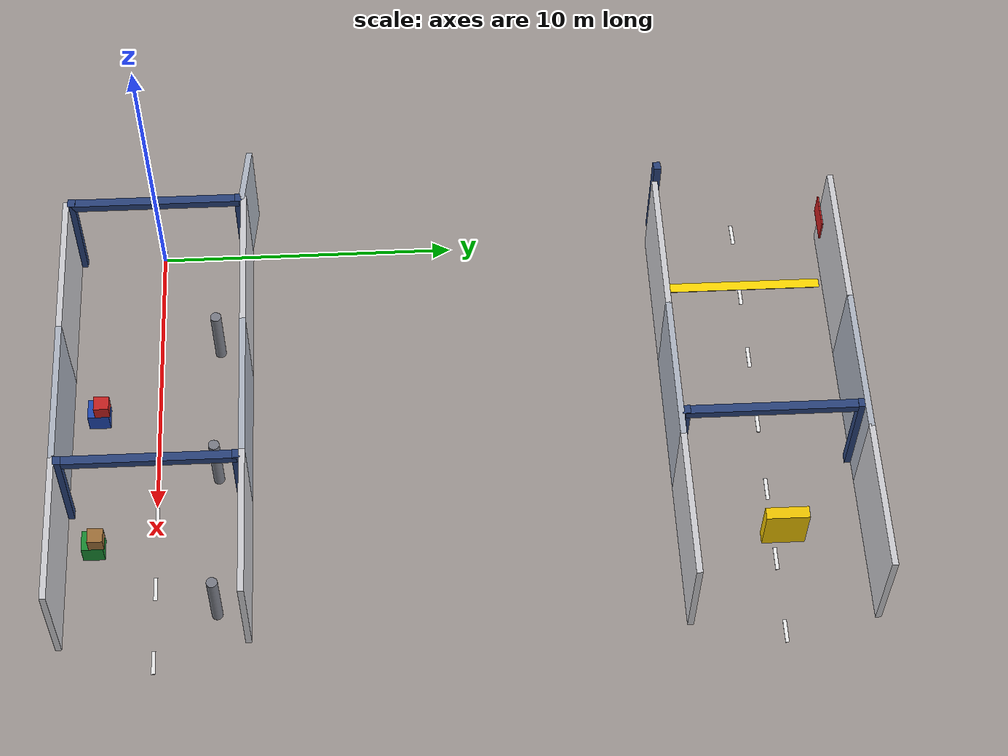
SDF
<sdf version="1.10">
 <world name="tunnel_circuit">
  <model name="tw_Ao_0">
   <static>true</static>
   <pose>2.500 -3.000 1.750 0 0 0.0000</pose>
   <link name="link">
    <collision name="col"><geometry><box><size>5.060 0.200 3.500</size></box></geometry></collision>
    <visual name="vis">
     <geometry><box><size>5.060 0.200 3.500</size></box></geometry>
     <material>
      <ambient>0.50 0.50 0.52 1</ambient>
      <diffuse>0.80 0.80 0.82 1</diffuse>
      <specular>0.1 0.1 0.1 1</specular>
      <pbr>
       <metal><albedo_map>detail.png</albedo_map><roughness>0.92</roughness><metalness>0.0</metalness></metal>
      </pbr>
     </material>
    </visual>
   </link>
  </model>
  <model name="tw_Ao_1">
   <static>true</static>
   <pose>7.500 -3.000 1.750 0 0 0.0000</pose>
   <link name="link">
    <collision name="col"><geometry><box><size>5.060 0.200 3.500</size></box></geometry></collision>
    <visual name="vis">
     <geometry><box><size>5.060 0.200 3.500</size></box></geometry>
     <material>
      <ambient>0.42 0.44 0.48 1</ambient>
      <diffuse>0.68 0.71 0.76 1</diffuse>
      <specular>0.1 0.1 0.1 1</specular>
      <pbr>
       <metal><albedo_map>detail.png</albedo_map><roughness>0.9</roughness><metalness>0.0</metalness></metal>
      </pbr>
     </material>
    </visual>
   </link>
  </model>
  <model name="tw_Ao_2">
   <static>true</static>
   <pose>12.500 -3.000 1.750 0 0 0.0000</pose>
   <link name="link">
    <collision name="col"><geometry><box><size>5.060 0.200 3.500</size></box></geometry></collision>
    <visual name="vis">
     <geometry><box><size>5.060 0.200 3.500</size></box></geometry>
     <material>
      <ambient>0.50 0.50 0.52 1</ambient>
      <diffuse>0.80 0.80 0.82 1</diffuse>
      <specular>0.1 0.1 0.1 1</specular>
      <pbr>
       <metal><albedo_map>detail.png</albedo_map><roughness>0.92</roughness><metalness>0.0</metalness></metal>
      </pbr>
     </material>
    </visual>
   </link>
  </model>
  <model name="tw_Ai_0">
   <static>true</static>
   <pose>2.500 3.000 1.750 0 0 0.0000</pose>
   <link name="link">
    <collision name="col"><geometry><box><size>5.060 0.200 3.500</size></box></geometry></collision>
    <visual name="vis">
     <geometry><box><size>5.060 0.200 3.500</size></box></geometry>
     <material>
      <ambient>0.50 0.50 0.52 1</ambient>
      <diffuse>0.80 0.80 0.82 1</diffuse>
      <specular>0.1 0.1 0.1 1</specular>
      <pbr>
       <metal><albedo_map>detail.png</albedo_map><roughness>0.92</roughness><metalness>0.0</metalness></metal>
      </pbr>
     </material>
    </visual>
   </link>
  </model>
  <model name="tw_Ai_1">
   <static>true</static>
   <pose>7.500 3.000 1.750 0 0 0.0000</pose>
   <link name="link">
    <collision name="col"><geometry><box><size>5.060 0.200 3.500</size></box></geometry></collision>
    <visual name="vis">
     <geometry><box><size>5.060 0.200 3.500</size></box></geometry>
     <material>
      <ambient>0.42 0.44 0.48 1</ambient>
      <diffuse>0.68 0.71 0.76 1</diffuse>
      <specular>0.1 0.1 0.1 1</specular>
      <pbr>
       <metal><albedo_map>detail.png</albedo_map><roughness>0.9</roughness><metalness>0.0</metalness></metal>
      </pbr>
     </material>
    </visual>
   </link>
  </model>
  <model name="tw_Ai_2">
   <static>true</static>
   <pose>12.500 3.000 1.750 0 0 0.0000</pose>
   <link name="link">
    <collision name="col"><geometry><box><size>5.060 0.200 3.500</size></box></geometry></collision>
    <visual name="vis">
     <geometry><box><size>5.060 0.200 3.500</size></box></geometry>
     <material>
      <ambient>0.50 0.50 0.52 1</ambient>
      <diffuse>0.80 0.80 0.82 1</diffuse>
      <specular>0.1 0.1 0.1 1</specular>
      <pbr>
       <metal><albedo_map>detail.png</albedo_map><roughness>0.92</roughness><metalness>0.0</metalness></metal>
      </pbr>
     </material>
    </visual>
   </link>
  </model>
  <model name="tw_Bo_0">
   <static>true</static>
   <pose>2.500 23.000 1.750 0 0 0.0000</pose>
   <link name="link">
    <collision name="col"><geometry><box><size>5.060 0.200 3.500</size></box></geometry></collision>
    <visual name="vis">
     <geometry><box><size>5.060 0.200 3.500</size></box></geometry>
     <material>
      <ambient>0.50 0.50 0.52 1</ambient>
      <diffuse>0.80 0.80 0.82 1</diffuse>
      <specular>0.1 0.1 0.1 1</specular>
      <pbr>
       <metal><albedo_map>detail.png</albedo_map><roughness>0.92</roughness><metalness>0.0</metalness></metal>
      </pbr>
     </material>
    </visual>
   </link>
  </model>
  <model name="tw_Bo_1">
   <static>true</static>
   <pose>7.500 23.000 1.750 0 0 0.0000</pose>
   <link name="link">
    <collision name="col"><geometry><box><size>5.060 0.200 3.500</size></box></geometry></collision>
    <visual name="vis">
     <geometry><box><size>5.060 0.200 3.500</size></box></geometry>
     <material>
      <ambient>0.42 0.44 0.48 1</ambient>
      <diffuse>0.68 0.71 0.76 1</diffuse>
      <specular>0.1 0.1 0.1 1</specular>
      <pbr>
       <metal><albedo_map>detail.png</albedo_map><roughness>0.9</roughness><metalness>0.0</metalness></metal>
      </pbr>
     </material>
    </visual>
   </link>
  </model>
  <model name="tw_Bo_2">
   <static>true</static>
   <pose>12.500 23.000 1.750 0 0 0.0000</pose>
   <link name="link">
    <collision name="col"><geometry><box><size>5.060 0.200 3.500</size></box></geometry></collision>
    <visual name="vis">
     <geometry><box><size>5.060 0.200 3.500</size></box></geometry>
     <material>
      <ambient>0.50 0.50 0.52 1</ambient>
      <diffuse>0.80 0.80 0.82 1</diffuse>
      <specular>0.1 0.1 0.1 1</specular>
      <pbr>
       <metal><albedo_map>detail.png</albedo_map><roughness>0.92</roughness><metalness>0.0</metalness></metal>
      </pbr>
     </material>
    </visual>
   </link>
  </model>
  <model name="tw_Bi_0">
   <static>true</static>
   <pose>2.500 17.000 1.750 0 0 0.0000</pose>
   <link name="link">
    <collision name="col"><geometry><box><size>5.060 0.200 3.500</size></box></geometry></collision>
    <visual name="vis">
     <geometry><box><size>5.060 0.200 3.500</size></box></geometry>
     <material>
      <ambient>0.50 0.50 0.52 1</ambient>
      <diffuse>0.80 0.80 0.82 1</diffuse>
      <specular>0.1 0.1 0.1 1</specular>
      <pbr>
       <metal><albedo_map>detail.png</albedo_map><roughness>0.92</roughness><metalness>0.0</metalness></metal>
      </pbr>
     </material>
    </visual>
   </link>
  </model>
  <model name="tw_Bi_1">
   <static>true</static>
   <pose>7.500 17.000 1.750 0 0 0.0000</pose>
   <link name="link">
    <collision name="col"><geometry><box><size>5.060 0.200 3.500</size></box></geometry></collision>
    <visual name="vis">
     <geometry><box><size>5.060 0.200 3.500</size></box></geometry>
     <material>
      <ambient>0.42 0.44 0.48 1</ambient>
      <diffuse>0.68 0.71 0.76 1</diffuse>
      <specular>0.1 0.1 0.1 1</specular>
      <pbr>
       <metal><albedo_map>detail.png</albedo_map><roughness>0.9</roughness><metalness>0.0</metalness></metal>
      </pbr>
     </material>
    </visual>
   </link>
  </model>
  <model name="tw_Bi_2">
   <static>true</static>
   <pose>12.500 17.000 1.750 0 0 0.0000</pose>
   <link name="link">
    <collision name="col"><geometry><box><size>5.060 0.200 3.500</size></box></geometry></collision>
    <visual name="vis">
     <geometry><box><size>5.060 0.200 3.500</size></box></geometry>
     <material>
      <ambient>0.50 0.50 0.52 1</ambient>
      <diffuse>0.80 0.80 0.82 1</diffuse>
      <specular>0.1 0.1 0.1 1</specular>
      <pbr>
       <metal><albedo_map>detail.png</albedo_map><roughness>0.92</roughness><metalness>0.0</metalness></metal>
      </pbr>
     </material>
    </visual>
   </link>
  </model>
  <model name="tw_Li_11">
   <static>true</static>
   <pose>-0.914 3.060 1.750 0 0 6.1523</pose>
   <link name="link">
    <collision name="col"><geometry><box><size>1.974 0.200 3.500</size></box></geometry></collision>
    <visual name="vis">
     <geometry><box><size>1.974 0.200 3.500</size></box></geometry>
     <material>
      <ambient>0.42 0.44 0.48 1</ambient>
      <diffuse>0.68 0.71 0.76 1</diffuse>
      <specular>0.1 0.1 0.1 1</specular>
      <pbr>
       <metal><albedo_map>detail.png</albedo_map><roughness>0.9</roughness><metalness>0.0</metalness></metal>
      </pbr>
     </material>
    </visual>
   </link>
  </model>
  <model name="rib0_p">
   <static>true</static>
   <pose>0.000 2.820 1.750 0 0 0.0000</pose>
   <link name="link">
    <collision name="col"><geometry><box><size>0.300 0.250 3.500</size></box></geometry></collision>
    <visual name="vis">
     <geometry><box><size>0.300 0.250 3.500</size></box></geometry>
     <material>
      <ambient>0.10 0.16 0.30 1</ambient>
      <diffuse>0.16 0.26 0.48 1</diffuse>
      <specular>0.3 0.3 0.35 1</specular>
     </material>
    </visual>
   </link>
  </model>
  <model name="rib0_m">
   <static>true</static>
   <pose>0.000 -2.820 1.750 0 0 0.0000</pose>
   <link name="link">
    <collision name="col"><geometry><box><size>0.300 0.250 3.500</size></box></geometry></collision>
    <visual name="vis">
     <geometry><box><size>0.300 0.250 3.500</size></box></geometry>
     <material>
      <ambient>0.10 0.16 0.30 1</ambient>
      <diffuse>0.16 0.26 0.48 1</diffuse>
      <specular>0.3 0.3 0.35 1</specular>
     </material>
    </visual>
   </link>
  </model>
  <model name="rib0_c">
   <static>true</static>
   <pose>0.000 0.000 3.340 0 0 0.0000</pose>
   <link name="link">
    <collision name="col"><geometry><box><size>0.300 5.700 0.280</size></box></geometry></collision>
    <visual name="vis">
     <geometry><box><size>0.300 5.700 0.280</size></box></geometry>
     <material>
      <ambient>0.10 0.16 0.30 1</ambient>
      <diffuse>0.16 0.26 0.48 1</diffuse>
      <specular>0.3 0.3 0.35 1</specular>
     </material>
    </visual>
   </link>
  </model>
  <model name="rib1_p">
   <static>true</static>
   <pose>10.142 2.820 1.750 0 0 0.0000</pose>
   <link name="link">
    <collision name="col"><geometry><box><size>0.300 0.250 3.500</size></box></geometry></collision>
    <visual name="vis">
     <geometry><box><size>0.300 0.250 3.500</size></box></geometry>
     <material>
      <ambient>0.10 0.16 0.30 1</ambient>
      <diffuse>0.16 0.26 0.48 1</diffuse>
      <specular>0.3 0.3 0.35 1</specular>
     </material>
    </visual>
   </link>
  </model>
  <model name="rib1_m">
   <static>true</static>
   <pose>10.142 -2.820 1.750 0 0 0.0000</pose>
   <link name="link">
    <collision name="col"><geometry><box><size>0.300 0.250 3.500</size></box></geometry></collision>
    <visual name="vis">
     <geometry><box><size>0.300 0.250 3.500</size></box></geometry>
     <material>
      <ambient>0.10 0.16 0.30 1</ambient>
      <diffuse>0.16 0.26 0.48 1</diffuse>
      <specular>0.3 0.3 0.35 1</specular>
     </material>
    </visual>
   </link>
  </model>
  <model name="rib1_c">
   <static>true</static>
   <pose>10.142 0.000 3.340 0 0 0.0000</pose>
   <link name="link">
    <collision name="col"><geometry><box><size>0.300 5.700 0.280</size></box></geometry></collision>
    <visual name="vis">
     <geometry><box><size>0.300 5.700 0.280</size></box></geometry>
     <material>
      <ambient>0.10 0.16 0.30 1</ambient>
      <diffuse>0.16 0.26 0.48 1</diffuse>
      <specular>0.3 0.3 0.35 1</specular>
     </material>
    </visual>
   </link>
  </model>
  <model name="rib16_p">
   <static>true</static>
   <pose>9.150 17.180 1.750 0 0 3.1416</pose>
   <link name="link">
    <collision name="col"><geometry><box><size>0.300 0.250 3.500</size></box></geometry></collision>
    <visual name="vis">
     <geometry><box><size>0.300 0.250 3.500</size></box></geometry>
     <material>
      <ambient>0.10 0.16 0.30 1</ambient>
      <diffuse>0.16 0.26 0.48 1</diffuse>
      <specular>0.3 0.3 0.35 1</specular>
     </material>
    </visual>
   </link>
  </model>
  <model name="rib16_m">
   <static>true</static>
   <pose>9.150 22.820 1.750 0 0 3.1416</pose>
   <link name="link">
    <collision name="col"><geometry><box><size>0.300 0.250 3.500</size></box></geometry></collision>
    <visual name="vis">
     <geometry><box><size>0.300 0.250 3.500</size></box></geometry>
     <material>
      <ambient>0.10 0.16 0.30 1</ambient>
      <diffuse>0.16 0.26 0.48 1</diffuse>
      <specular>0.3 0.3 0.35 1</specular>
     </material>
    </visual>
   </link>
  </model>
  <model name="rib16_c">
   <static>true</static>
   <pose>9.150 20.000 3.340 0 0 3.1416</pose>
   <link name="link">
    <collision name="col"><geometry><box><size>0.300 5.700 0.280</size></box></geometry></collision>
    <visual name="vis">
     <geometry><box><size>0.300 5.700 0.280</size></box></geometry>
     <material>
      <ambient>0.10 0.16 0.30 1</ambient>
      <diffuse>0.16 0.26 0.48 1</diffuse>
      <specular>0.3 0.3 0.35 1</specular>
     </material>
    </visual>
   </link>
  </model>
  <model name="rib17_p">
   <static>true</static>
   <pose>-0.710 17.145 1.750 0 0 3.2407</pose>
   <link name="link">
    <collision name="col"><geometry><box><size>0.300 0.250 3.500</size></box></geometry></collision>
    <visual name="vis">
     <geometry><box><size>0.300 0.250 3.500</size></box></geometry>
     <material>
      <ambient>0.10 0.16 0.30 1</ambient>
      <diffuse>0.16 0.26 0.48 1</diffuse>
      <specular>0.3 0.3 0.35 1</specular>
     </material>
    </visual>
   </link>
  </model>
  <model name="sign0">
   <static>true</static>
   <pose>6.338 2.840 1.500 0 0 0.0000</pose>
   <link name="link">
    <visual name="vis">
     <geometry><box><size>1.200 0.050 0.800</size></box></geometry>
     <material>
      <ambient>0.0 0.5 0.2 1</ambient>
      <diffuse>0.0 0.7 0.3 1</diffuse>
      <specular>0.1 0.1 0.1 1</specular>
     </material>
    </visual>
   </link>
  </model>
  <model name="sign12">
   <static>true</static>
   <pose>12.954 17.160 1.500 0 0 3.1416</pose>
   <link name="link">
    <visual name="vis">
     <geometry><box><size>1.200 0.050 0.800</size></box></geometry>
     <material>
      <ambient>0.0 0.3 0.6 1</ambient>
      <diffuse>0.0 0.4 0.85 1</diffuse>
      <specular>0.1 0.1 0.1 1</specular>
     </material>
    </visual>
   </link>
  </model>
  <model name="sign13">
   <static>true</static>
   <pose>0.277 22.840 1.500 0 0 3.1416</pose>
   <link name="link">
    <visual name="vis">
     <geometry><box><size>1.200 0.050 0.800</size></box></geometry>
     <material>
      <ambient>0.55 0.08 0.08 1</ambient>
      <diffuse>0.82 0.12 0.12 1</diffuse>
      <specular>0.1 0.1 0.1 1</specular>
     </material>
    </visual>
   </link>
  </model>
  <model name="dash0">
   <static>true</static>
   <pose>0.000 0.000 0.012 0 0 0.0000</pose>
   <link name="link">
    <visual name="vis">
     <geometry><box><size>0.800 0.120 0.020</size></box></geometry>
     <material>
      <ambient>0.7 0.7 0.7 1</ambient>
      <diffuse>0.92 0.92 0.92 1</diffuse>
      <specular>0.1 0.1 0.1 1</specular>
     </material>
    </visual>
   </link>
  </model>
  <model name="dash1">
   <static>true</static>
   <pose>2.600 0.000 0.012 0 0 0.0000</pose>
   <link name="link">
    <visual name="vis">
     <geometry><box><size>0.800 0.120 0.020</size></box></geometry>
     <material>
      <ambient>0.7 0.7 0.7 1</ambient>
      <diffuse>0.92 0.92 0.92 1</diffuse>
      <specular>0.1 0.1 0.1 1</specular>
     </material>
    </visual>
   </link>
  </model>
  <model name="dash2">
   <static>true</static>
   <pose>5.201 0.000 0.012 0 0 0.0000</pose>
   <link name="link">
    <visual name="vis">
     <geometry><box><size>0.800 0.120 0.020</size></box></geometry>
     <material>
      <ambient>0.7 0.7 0.7 1</ambient>
      <diffuse>0.92 0.92 0.92 1</diffuse>
      <specular>0.1 0.1 0.1 1</specular>
     </material>
    </visual>
   </link>
  </model>
  <model name="dash3">
   <static>true</static>
   <pose>7.801 0.000 0.012 0 0 0.0000</pose>
   <link name="link">
    <visual name="vis">
     <geometry><box><size>0.800 0.120 0.020</size></box></geometry>
     <material>
      <ambient>0.7 0.7 0.7 1</ambient>
      <diffuse>0.92 0.92 0.92 1</diffuse>
      <specular>0.1 0.1 0.1 1</specular>
     </material>
    </visual>
   </link>
  </model>
  <model name="dash4">
   <static>true</static>
   <pose>10.402 0.000 0.012 0 0 0.0000</pose>
   <link name="link">
    <visual name="vis">
     <geometry><box><size>0.800 0.120 0.020</size></box></geometry>
     <material>
      <ambient>0.7 0.7 0.7 1</ambient>
      <diffuse>0.92 0.92 0.92 1</diffuse>
      <specular>0.1 0.1 0.1 1</specular>
     </material>
    </visual>
   </link>
  </model>
  <model name="dash5">
   <static>true</static>
   <pose>13.002 0.000 0.012 0 0 0.0000</pose>
   <link name="link">
    <visual name="vis">
     <geometry><box><size>0.800 0.120 0.020</size></box></geometry>
     <material>
      <ambient>0.7 0.7 0.7 1</ambient>
      <diffuse>0.92 0.92 0.92 1</diffuse>
      <specular>0.1 0.1 0.1 1</specular>
     </material>
    </visual>
   </link>
  </model>
  <model name="dash6">
   <static>true</static>
   <pose>15.602 0.000 0.012 0 0 0.0000</pose>
   <link name="link">
    <visual name="vis">
     <geometry><box><size>0.800 0.120 0.020</size></box></geometry>
     <material>
      <ambient>0.7 0.7 0.7 1</ambient>
      <diffuse>0.92 0.92 0.92 1</diffuse>
      <specular>0.1 0.1 0.1 1</specular>
     </material>
    </visual>
   </link>
  </model>
  <model name="dash60">
   <static>true</static>
   <pose>15.391 20.000 0.012 0 0 3.1416</pose>
   <link name="link">
    <visual name="vis">
     <geometry><box><size>0.800 0.120 0.020</size></box></geometry>
     <material>
      <ambient>0.7 0.7 0.7 1</ambient>
      <diffuse>0.92 0.92 0.92 1</diffuse>
      <specular>0.1 0.1 0.1 1</specular>
     </material>
    </visual>
   </link>
  </model>
  <model name="dash61">
   <static>true</static>
   <pose>12.791 20.000 0.012 0 0 3.1416</pose>
   <link name="link">
    <visual name="vis">
     <geometry><box><size>0.800 0.120 0.020</size></box></geometry>
     <material>
      <ambient>0.7 0.7 0.7 1</ambient>
      <diffuse>0.92 0.92 0.92 1</diffuse>
      <specular>0.1 0.1 0.1 1</specular>
     </material>
    </visual>
   </link>
  </model>
  <model name="dash62">
   <static>true</static>
   <pose>10.191 20.000 0.012 0 0 3.1416</pose>
   <link name="link">
    <visual name="vis">
     <geometry><box><size>0.800 0.120 0.020</size></box></geometry>
     <material>
      <ambient>0.7 0.7 0.7 1</ambient>
      <diffuse>0.92 0.92 0.92 1</diffuse>
      <specular>0.1 0.1 0.1 1</specular>
     </material>
    </visual>
   </link>
  </model>
  <model name="dash63">
   <static>true</static>
   <pose>7.590 20.000 0.012 0 0 3.1416</pose>
   <link name="link">
    <visual name="vis">
     <geometry><box><size>0.800 0.120 0.020</size></box></geometry>
     <material>
      <ambient>0.7 0.7 0.7 1</ambient>
      <diffuse>0.92 0.92 0.92 1</diffuse>
      <specular>0.1 0.1 0.1 1</specular>
     </material>
    </visual>
   </link>
  </model>
  <model name="dash64">
   <static>true</static>
   <pose>4.990 20.000 0.012 0 0 3.1416</pose>
   <link name="link">
    <visual name="vis">
     <geometry><box><size>0.800 0.120 0.020</size></box></geometry>
     <material>
      <ambient>0.7 0.7 0.7 1</ambient>
      <diffuse>0.92 0.92 0.92 1</diffuse>
      <specular>0.1 0.1 0.1 1</specular>
     </material>
    </visual>
   </link>
  </model>
  <model name="dash65">
   <static>true</static>
   <pose>2.389 20.000 0.012 0 0 3.1416</pose>
   <link name="link">
    <visual name="vis">
     <geometry><box><size>0.800 0.120 0.020</size></box></geometry>
     <material>
      <ambient>0.7 0.7 0.7 1</ambient>
      <diffuse>0.92 0.92 0.92 1</diffuse>
      <specular>0.1 0.1 0.1 1</specular>
     </material>
    </visual>
   </link>
  </model>
  <model name="dash66">
   <static>true</static>
   <pose>-0.211 19.998 0.012 0 0 3.1627</pose>
   <link name="link">
    <visual name="vis">
     <geometry><box><size>0.800 0.120 0.020</size></box></geometry>
     <material>
      <ambient>0.7 0.7 0.7 1</ambient>
      <diffuse>0.92 0.92 0.92 1</diffuse>
      <specular>0.1 0.1 0.1 1</specular>
     </material>
    </visual>
   </link>
  </model>
  <model name="initpillar0">
   <static>true</static>
   <pose>4.000 2.000 1.100 0 0 0</pose>
   <link name="link">
    <collision name="col">
     <geometry><cylinder><radius>0.18</radius><length>2.2</length></cylinder></geometry>
    </collision>
    <visual name="vis">
     <geometry><cylinder><radius>0.18</radius><length>2.200</length></cylinder></geometry>
     <material>
      <ambient>0.33 0.34 0.37 1</ambient>
      <diffuse>0.48 0.49 0.53 1</diffuse>
      <specular>0.3 0.3 0.3 1</specular>
     </material>
    </visual>
   </link>
  </model>
  <model name="initcrate1a">
   <static>true</static>
   <pose>6.500 -2.000 0.350 0 0 0.0000</pose>
   <link name="link">
    <collision name="col"><geometry><box><size>0.700 0.700 0.700</size></box></geometry></collision>
    <visual name="vis">
     <geometry><box><size>0.700 0.700 0.700</size></box></geometry>
     <material>
      <ambient>0.07 0.16 0.42 1</ambient>
      <diffuse>0.12 0.28 0.70 1</diffuse>
      <specular>0.3 0.3 0.4 1</specular>
     </material>
    </visual>
   </link>
  </model>
  <model name="initcrate1b">
   <static>true</static>
   <pose>6.600 -1.850 0.950 0 0 0.0000</pose>
   <link name="link">
    <collision name="col"><geometry><box><size>0.500 0.500 0.500</size></box></geometry></collision>
    <visual name="vis">
     <geometry><box><size>0.500 0.500 0.500</size></box></geometry>
     <material>
      <ambient>0.45 0.07 0.07 1</ambient>
      <diffuse>0.78 0.13 0.13 1</diffuse>
      <specular>0.1 0.1 0.1 1</specular>
     </material>
    </visual>
   </link>
  </model>
  <model name="initpillar2">
   <static>true</static>
   <pose>9.000 2.000 1.100 0 0 0</pose>
   <link name="link">
    <collision name="col">
     <geometry><cylinder><radius>0.18</radius><length>2.2</length></cylinder></geometry>
    </collision>
    <visual name="vis">
     <geometry><cylinder><radius>0.18</radius><length>2.200</length></cylinder></geometry>
     <material>
      <ambient>0.33 0.34 0.37 1</ambient>
      <diffuse>0.48 0.49 0.53 1</diffuse>
      <specular>0.3 0.3 0.3 1</specular>
     </material>
    </visual>
   </link>
  </model>
  <model name="initcrate3a">
   <static>true</static>
   <pose>11.500 -2.000 0.350 0 0 0.0000</pose>
   <link name="link">
    <collision name="col"><geometry><box><size>0.700 0.700 0.700</size></box></geometry></collision>
    <visual name="vis">
     <geometry><box><size>0.700 0.700 0.700</size></box></geometry>
     <material>
      <ambient>0.06 0.35 0.12 1</ambient>
      <diffuse>0.10 0.55 0.20 1</diffuse>
      <specular>0.1 0.1 0.1 1</specular>
     </material>
    </visual>
   </link>
  </model>
  <model name="initcrate3b">
   <static>true</static>
   <pose>11.600 -1.850 0.950 0 0 0.0000</pose>
   <link name="link">
    <collision name="col"><geometry><box><size>0.500 0.500 0.500</size></box></geometry></collision>
    <visual name="vis">
     <geometry><box><size>0.500 0.500 0.500</size></box></geometry>
     <material>
      <ambient>0.40 0.28 0.14 1</ambient>
      <diffuse>0.62 0.44 0.22 1</diffuse>
      <specular>0.1 0.1 0.1 1</specular>
     </material>
    </visual>
   </link>
  </model>
  <model name="initpillar4">
   <static>true</static>
   <pose>14.000 2.000 1.100 0 0 0</pose>
   <link name="link">
    <collision name="col">
     <geometry><cylinder><radius>0.18</radius><length>2.2</length></cylinder></geometry>
    </collision>
    <visual name="vis">
     <geometry><cylinder><radius>0.18</radius><length>2.200</length></cylinder></geometry>
     <material>
      <ambient>0.33 0.34 0.37 1</ambient>
      <diffuse>0.48 0.49 0.53 1</diffuse>
      <specular>0.3 0.3 0.3 1</specular>
     </material>
    </visual>
   </link>
  </model>
  <model name="hazard2">
   <static>true</static>
   <pose>2.000 20.000 0.013 0 0 3.1416</pose>
   <link name="link">
    <visual name="vis">
     <geometry><box><size>0.350 5.600 0.020</size></box></geometry>
     <material>
      <ambient>0.85 0.75 0.0 1</ambient>
      <diffuse>1.0 0.85 0.0 1</diffuse>
      <specular>0.1 0.1 0.1 1</specular>
     </material>
    </visual>
   </link>
  </model>
  <model name="obs_B3_block">
   <static>true</static>
   <pose>12.000 20.300 0.800 0 0 0.0000</pose>
   <link name="link">
    <collision name="col"><geometry><box><size>0.400 1.400 1.600</size></box></geometry></collision>
    <visual name="vis">
     <geometry><box><size>0.400 1.400 1.600</size></box></geometry>
     <material>
      <ambient>0.55 0.45 0.0 1</ambient>
      <diffuse>0.95 0.78 0.0 1</diffuse>
      <specular>0.1 0.1 0.1 1</specular>
     </material>
    </visual>
   </link>
  </model>
 </world>
</sdf>
